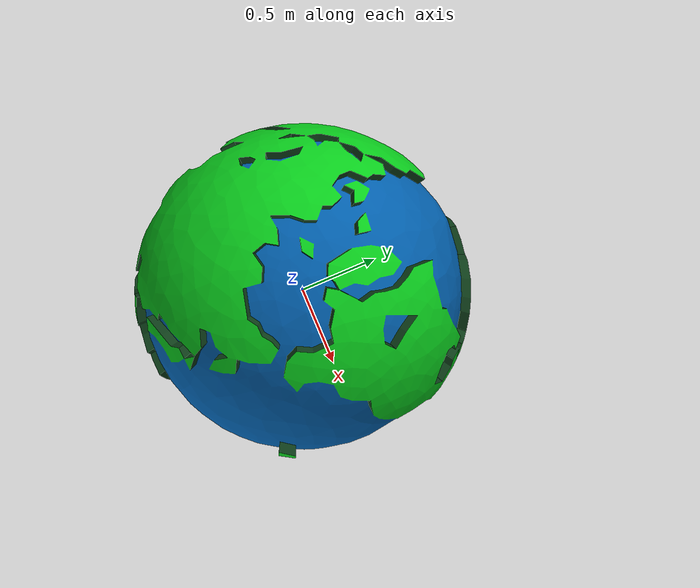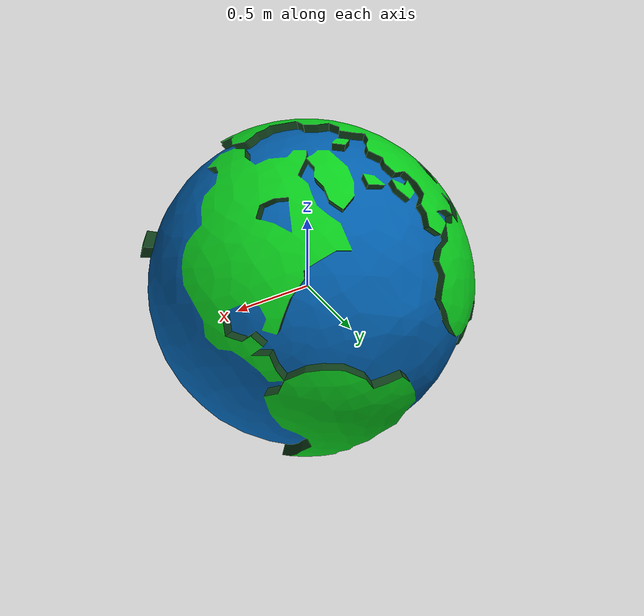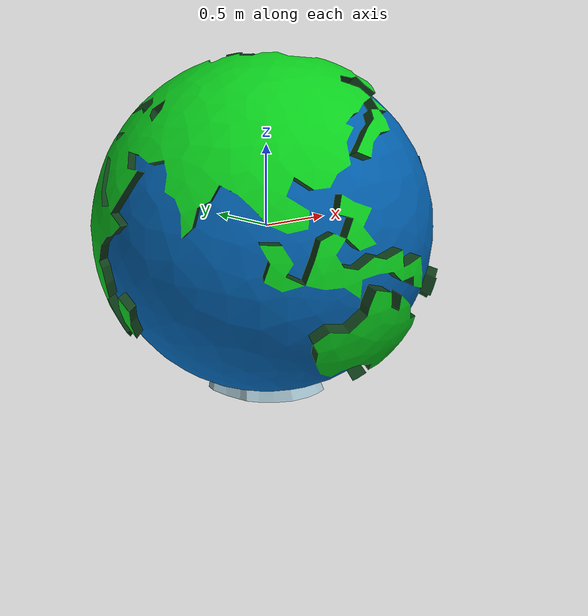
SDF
<sdf version='1.7'>
  <model name='earth'>
    <link name='dummy'>
      <inertial>
        <pose>0 0 0 0 -0 0</pose>
        <mass>10</mass>
        <inertia>
          <ixx>120.</ixx>
          <ixy>0</ixy>
          <ixz>0</ixz>
          <iyy>120.</iyy>
          <iyz>0</iyz>
          <izz>120.</izz>
        </inertia>
      </inertial>
      <visual name='dummy_fixed_joint_lump__base_link_visual'>
        <pose>0 0 0 0 -0 0</pose>
        <geometry>
          <mesh>
            <scale>1 1 1</scale>
            <uri>model://earth_dae.dae</uri>
          </mesh>
        </geometry>
      </visual>
    </link>

    <plugin name="gazebo_ros_force" filename="libgazebo_ros_force.so">
      <ros>
        <namespace>/Midterm/ForceInput</namespace>
        <remapping>gazebo_ros_force:=TorqueBySun</remapping>
      </ros>
      <link_name>dummy</link_name>
      <force_frame>world</force_frame>
    </plugin>

  </model>
</sdf>
